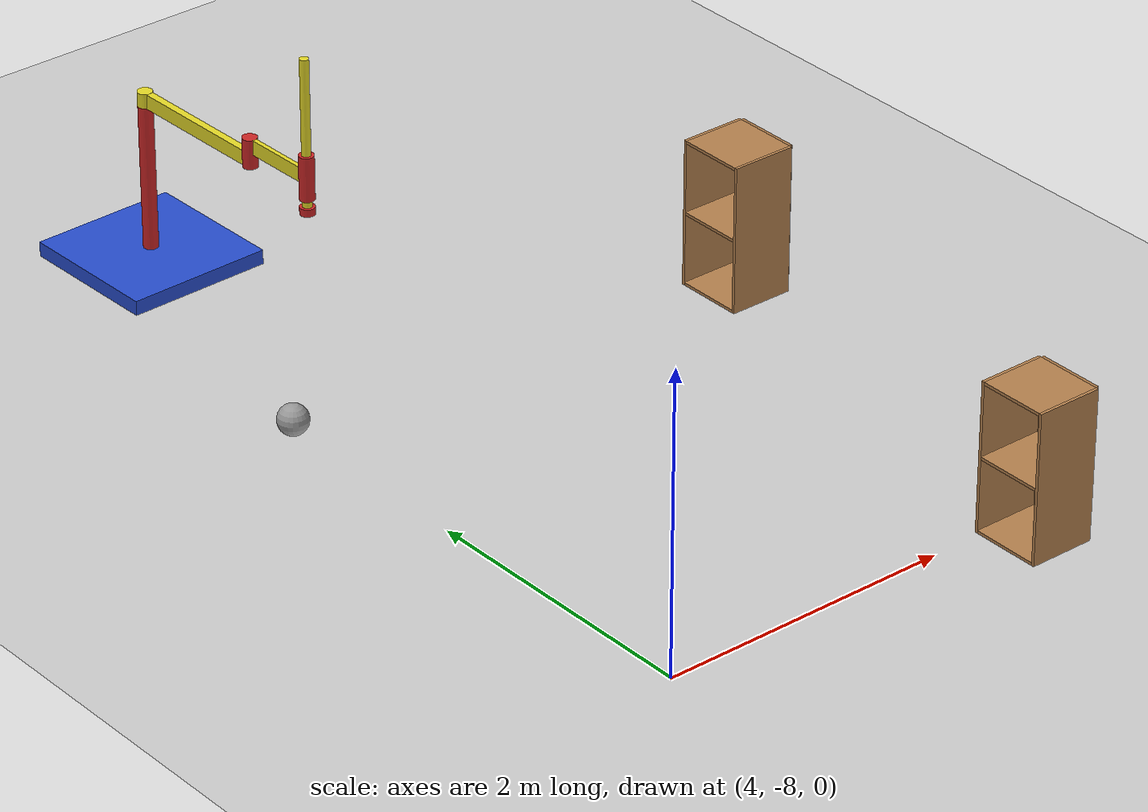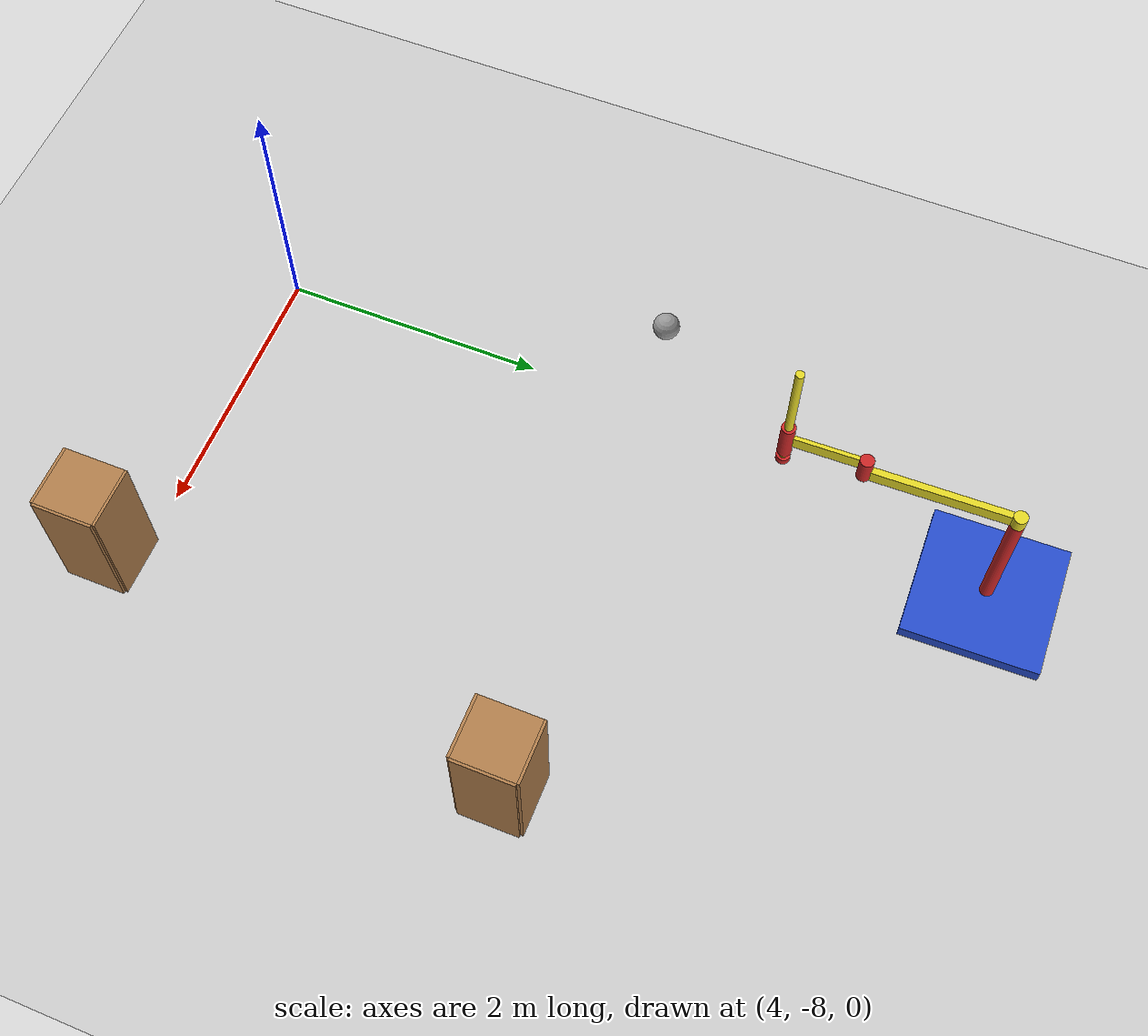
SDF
<sdf version="1.7">
 <world name="default">
  <model name="ground_plane">
   <static>1</static>
   <link name="link">
    <collision name="collision">
     <geometry><plane><normal>0 0 1</normal><size>100 100</size></plane></geometry>
     <surface>
      <contact><collide_bitmask>65535</collide_bitmask></contact>
      <friction><ode><mu>100</mu><mu2>50</mu2></ode></friction>
     </surface>
    </collision>
    <visual name="visual">
     <cast_shadows>0</cast_shadows>
     <geometry><plane><normal>0 0 1</normal><size>100 100</size></plane></geometry>
     <material>
      <script><uri>file://media/materials/scripts/gazebo.material</uri><name>Gazebo/Grey</name></script>
     </material>
    </visual>
   </link>
  </model>
  <model name="cabinet">
   <static>1</static>
   <link name="cabinet_bottom_plate">
    <inertial>
     <pose>0 0 -1 0 -0 0</pose>
     <inertia><ixx>2.05</ixx><ixy>0</ixy><ixz>0</ixz><iyy>2.05</iyy><iyz>0</iyz><izz>2.05</izz></inertia>
     <mass>25</mass>
    </inertial>
    <collision name="cabinet_bottom_plate_geom">
     <pose>0 0 0.01 0 -0 0</pose>
     <geometry><box><size>0.45 0.45 0.02</size></box></geometry>
    </collision>
    <visual name="cabinet_bottom_plate_geom_visual">
     <pose>0 0 0.01 0 -0 0</pose>
     <geometry><box><size>0.45 0.45 0.02</size></box></geometry>
     <material>
      <script><uri>file://media/materials/scripts/gazebo.material</uri><name>Gazebo/Wood</name></script>
     </material>
    </visual>
    <collision name="cabinet_bottom_plate_geom_cabinet_back_plate">
     <pose>0.235 0 0.51 0 -0 0</pose>
     <geometry><box><size>0.02 0.45 1.02</size></box></geometry>
    </collision>
    <visual name="cabinet_bottom_plate_geom_cabinet_back_plate_visual">
     <pose>0.235 0 0.51 0 -0 0</pose>
     <geometry><box><size>0.02 0.45 1.02</size></box></geometry>
     <material>
      <script><uri>file://media/materials/scripts/gazebo.material</uri><name>Gazebo/Wood</name></script>
     </material>
    </visual>
    <collision name="cabinet_bottom_plate_geom_cabinet_left_plate">
     <pose>0 0.235 0.51 0 -0 0</pose>
     <geometry><box><size>0.45 0.02 1.02</size></box></geometry>
    </collision>
    <visual name="cabinet_bottom_plate_geom_cabinet_left_plate_visual">
     <pose>0 0.235 0.51 0 -0 0</pose>
     <geometry><box><size>0.45 0.02 1.02</size></box></geometry>
     <material>
      <script><uri>file://media/materials/scripts/gazebo.material</uri><name>Gazebo/Wood</name></script>
     </material>
    </visual>
    <collision name="cabinet_bottom_plate_geom_cabinet_middle_plate">
     <pose>0 0 0.51 0 -0 0</pose>
     <geometry><box><size>0.45 0.45 0.02</size></box></geometry>
    </collision>
    <visual name="cabinet_bottom_plate_geom_cabinet_middle_plate_visual">
     <pose>0 0 0.51 0 -0 0</pose>
     <geometry><box><size>0.45 0.45 0.02</size></box></geometry>
     <material>
      <script><uri>file://media/materials/scripts/gazebo.material</uri><name>Gazebo/Wood</name></script>
     </material>
    </visual>
    <collision name="cabinet_bottom_plate_geom_cabinet_right_plate">
     <pose>0 -0.235 0.51 0 -0 0</pose>
     <geometry><box><size>0.45 0.02 1.02</size></box></geometry>
    </collision>
    <visual name="cabinet_bottom_plate_geom_cabinet_right_plate_visual">
     <pose>0 -0.235 0.51 0 -0 0</pose>
     <geometry><box><size>0.45 0.02 1.02</size></box></geometry>
     <material>
      <script><uri>file://media/materials/scripts/gazebo.material</uri><name>Gazebo/Wood</name></script>
     </material>
    </visual>
    <collision name="cabinet_bottom_plate_geom_cabinet_top_plate">
     <pose>0 0 1.01 0 -0 0</pose>
     <geometry><box><size>0.45 0.45 0.02</size></box></geometry>
    </collision>
    <visual name="cabinet_bottom_plate_geom_cabinet_top_plate_visual">
     <pose>0 0 1.01 0 -0 0</pose>
     <geometry><box><size>0.45 0.45 0.02</size></box></geometry>
     <material>
      <script><uri>file://media/materials/scripts/gazebo.material</uri><name>Gazebo/Wood</name></script>
     </material>
    </visual>
   </link>
   <pose>7.1738 -4.91295 0 0 -0 0</pose>
  </model>
  <model name="cabinet_0">
   <static>1</static>
   <link name="cabinet_bottom_plate">
    <inertial>
     <pose>0 0 -1 0 -0 0</pose>
     <inertia><ixx>2.05</ixx><ixy>0</ixy><ixz>0</ixz><iyy>2.05</iyy><iyz>0</iyz><izz>2.05</izz></inertia>
     <mass>25</mass>
    </inertial>
    <collision name="cabinet_bottom_plate_geom">
     <pose>0 0 0.01 0 -0 0</pose>
     <geometry><box><size>0.45 0.45 0.02</size></box></geometry>
    </collision>
    <visual name="cabinet_bottom_plate_geom_visual">
     <pose>0 0 0.01 0 -0 0</pose>
     <geometry><box><size>0.45 0.45 0.02</size></box></geometry>
     <material>
      <script><uri>file://media/materials/scripts/gazebo.material</uri><name>Gazebo/Wood</name></script>
     </material>
    </visual>
    <collision name="cabinet_bottom_plate_geom_cabinet_back_plate">
     <pose>0.235 0 0.51 0 -0 0</pose>
     <geometry><box><size>0.02 0.45 1.02</size></box></geometry>
    </collision>
    <visual name="cabinet_bottom_plate_geom_cabinet_back_plate_visual">
     <pose>0.235 0 0.51 0 -0 0</pose>
     <geometry><box><size>0.02 0.45 1.02</size></box></geometry>
     <material>
      <script><uri>file://media/materials/scripts/gazebo.material</uri><name>Gazebo/Wood</name></script>
     </material>
    </visual>
    <collision name="cabinet_bottom_plate_geom_cabinet_left_plate">
     <pose>0 0.235 0.51 0 -0 0</pose>
     <geometry><box><size>0.45 0.02 1.02</size></box></geometry>
    </collision>
    <visual name="cabinet_bottom_plate_geom_cabinet_left_plate_visual">
     <pose>0 0.235 0.51 0 -0 0</pose>
     <geometry><box><size>0.45 0.02 1.02</size></box></geometry>
     <material>
      <script><uri>file://media/materials/scripts/gazebo.material</uri><name>Gazebo/Wood</name></script>
     </material>
    </visual>
    <collision name="cabinet_bottom_plate_geom_cabinet_middle_plate">
     <pose>0 0 0.51 0 -0 0</pose>
     <geometry><box><size>0.45 0.45 0.02</size></box></geometry>
    </collision>
    <visual name="cabinet_bottom_plate_geom_cabinet_middle_plate_visual">
     <pose>0 0 0.51 0 -0 0</pose>
     <geometry><box><size>0.45 0.45 0.02</size></box></geometry>
     <material>
      <script><uri>file://media/materials/scripts/gazebo.material</uri><name>Gazebo/Wood</name></script>
     </material>
    </visual>
    <collision name="cabinet_bottom_plate_geom_cabinet_right_plate">
     <pose>0 -0.235 0.51 0 -0 0</pose>
     <geometry><box><size>0.45 0.02 1.02</size></box></geometry>
    </collision>
    <visual name="cabinet_bottom_plate_geom_cabinet_right_plate_visual">
     <pose>0 -0.235 0.51 0 -0 0</pose>
     <geometry><box><size>0.45 0.02 1.02</size></box></geometry>
     <material>
      <script><uri>file://media/materials/scripts/gazebo.material</uri><name>Gazebo/Wood</name></script>
     </material>
    </visual>
    <collision name="cabinet_bottom_plate_geom_cabinet_top_plate">
     <pose>0 0 1.01 0 -0 0</pose>
     <geometry><box><size>0.45 0.45 0.02</size></box></geometry>
    </collision>
    <visual name="cabinet_bottom_plate_geom_cabinet_top_plate_visual">
     <pose>0 0 1.01 0 -0 0</pose>
     <geometry><box><size>0.45 0.45 0.02</size></box></geometry>
     <material>
      <script><uri>file://media/materials/scripts/gazebo.material</uri><name>Gazebo/Wood</name></script>
     </material>
    </visual>
   </link>
   <pose>6.58147 -8.20495 0 0 -0 0</pose>
  </model>
  <model name="simple_arm">
   <link name="arm_base">
    <inertial>
     <pose>0 0 0.00099 0 -0 0</pose>
     <inertia><ixx>1.11</ixx><ixy>0</ixy><ixz>0</ixz><iyy>100.11</iyy><iyz>0</iyz><izz>1.01</izz></inertia>
     <mass>101</mass>
    </inertial>
    <collision name="arm_base_geom">
     <pose>0 0 0.05 0 -0 0</pose>
     <geometry><box><size>1 1 0.1</size></box></geometry>
    </collision>
    <visual name="arm_base_geom_visual">
     <pose>0 0 0.05 0 -0 0</pose>
     <geometry><box><size>1 1 0.1</size></box></geometry>
     <material>
      <script><uri>file://media/materials/scripts/gazebo.material</uri><name>Gazebo/Blue</name></script>
     </material>
    </visual>
    <collision name="arm_base_geom_arm_trunk">
     <pose>0 0 0.6 0 -0 0</pose>
     <geometry><cylinder><radius>0.05</radius><length>1</length></cylinder></geometry>
    </collision>
    <visual name="arm_base_geom_arm_trunk_visual">
     <pose>0 0 0.6 0 -0 0</pose>
     <geometry><cylinder><radius>0.05</radius><length>1</length></cylinder></geometry>
     <material>
      <script><uri>file://media/materials/scripts/gazebo.material</uri><name>Gazebo/Red</name></script>
     </material>
    </visual>
   </link>
   <link name="arm_shoulder_pan">
    <pose>0 0 1.1 0 -0 0</pose>
    <inertial>
     <pose>0.045455 0 0 0 -0 0</pose>
     <inertia><ixx>0.011</ixx><ixy>0</ixy><ixz>0</ixz><iyy>0.0225</iyy><iyz>0</iyz><izz>0.0135</izz></inertia>
     <mass>1.1</mass>
    </inertial>
    <collision name="arm_shoulder_pan_geom">
     <pose>0 0 0.05 0 -0 0</pose>
     <geometry><cylinder><radius>0.05</radius><length>0.1</length></cylinder></geometry>
    </collision>
    <visual name="arm_shoulder_pan_geom_visual">
     <pose>0 0 0.05 0 -0 0</pose>
     <geometry><cylinder><radius>0.05</radius><length>0.1</length></cylinder></geometry>
     <material>
      <script><uri>file://media/materials/scripts/gazebo.material</uri><name>Gazebo/Yellow</name></script>
     </material>
    </visual>
    <collision name="arm_shoulder_pan_geom_arm_shoulder">
     <pose>0.55 0 0.05 0 -0 0</pose>
     <geometry><box><size>1 0.05 0.1</size></box></geometry>
    </collision>
    <visual name="arm_shoulder_pan_geom_arm_shoulder_visual">
     <pose>0.55 0 0.05 0 -0 0</pose>
     <geometry><box><size>1 0.05 0.1</size></box></geometry>
     <material>
      <script><uri>file://media/materials/scripts/gazebo.material</uri><name>Gazebo/Yellow</name></script>
     </material>
    </visual>
   </link>
   <link name="arm_elbow_pan">
    <pose>1.05 0 1.1 0 -0 0</pose>
    <inertial>
     <pose>0.0875 0 0.083333 0 -0 0</pose>
     <inertia>
      <ixx>0.031</ixx>
      <ixy>0</ixy>
      <ixz>0.005</ixz>
      <iyy>0.07275</iyy>
      <iyz>0</iyz>
      <izz>0.04475</izz>
     </inertia>
     <mass>1.2</mass>
    </inertial>
    <collision name="arm_elbow_pan_geom">
     <pose>0 0 0.1 0 -0 0</pose>
     <geometry><cylinder><radius>0.05</radius><length>0.2</length></cylinder></geometry>
    </collision>
    <visual name="arm_elbow_pan_geom_visual">
     <pose>0 0 0.1 0 -0 0</pose>
     <geometry><cylinder><radius>0.05</radius><length>0.2</length></cylinder></geometry>
     <material>
      <script><uri>file://media/materials/scripts/gazebo.material</uri><name>Gazebo/Red</name></script>
     </material>
    </visual>
    <collision name="arm_elbow_pan_geom_arm_elbow">
     <pose>0.3 0 0.15 0 -0 0</pose>
     <geometry><box><size>0.5 0.03 0.1</size></box></geometry>
    </collision>
    <visual name="arm_elbow_pan_geom_arm_elbow_visual">
     <pose>0.3 0 0.15 0 -0 0</pose>
     <geometry><box><size>0.5 0.03 0.1</size></box></geometry>
     <material>
      <script><uri>file://media/materials/scripts/gazebo.material</uri><name>Gazebo/Yellow</name></script>
     </material>
    </visual>
    <collision name="arm_elbow_pan_geom_arm_wrist">
     <pose>0.55 0 0.15 0 -0 0</pose>
     <geometry><cylinder><radius>0.05</radius><length>0.3</length></cylinder></geometry>
    </collision>
    <visual name="arm_elbow_pan_geom_arm_wrist_visual">
     <pose>0.55 0 0.15 0 -0 0</pose>
     <geometry><cylinder><radius>0.05</radius><length>0.3</length></cylinder></geometry>
     <material>
      <script><uri>file://media/materials/scripts/gazebo.material</uri><name>Gazebo/Red</name></script>
     </material>
    </visual>
   </link>
   <link name="arm_wrist_lift">
    <pose>1.6 0 1.05 0 -0 0</pose>
    <inertial>
     <inertia><ixx>0.01</ixx><ixy>0</ixy><ixz>0</ixz><iyy>0.01</iyy><iyz>0</iyz><izz>0.001</izz></inertia>
     <mass>0.1</mass>
    </inertial>
    <collision name="arm_wrist_lift_geom">
     <pose>0 0 0.5 0 -0 0</pose>
     <geometry><cylinder><radius>0.03</radius><length>1</length></cylinder></geometry>
    </collision>
    <visual name="arm_wrist_lift_geom_visual">
     <pose>0 0 0.5 0 -0 0</pose>
     <geometry><cylinder><radius>0.03</radius><length>1</length></cylinder></geometry>
     <material>
      <script><uri>file://media/materials/scripts/gazebo.material</uri><name>Gazebo/Yellow</name></script>
     </material>
    </visual>
   </link>
   <link name="arm_wrist_roll">
    <pose>1.6 0 1 0 -0 0</pose>
    <inertial>
     <inertia><ixx>0.01</ixx><ixy>0</ixy><ixz>0</ixz><iyy>0.01</iyy><iyz>0</iyz><izz>0.001</izz></inertia>
     <mass>0.1</mass>
    </inertial>
    <collision name="arm_wrist_roll_geom">
     <pose>0 0 0.025 0 -0 0</pose>
     <geometry><cylinder><radius>0.05</radius><length>0.05</length></cylinder></geometry>
    </collision>
    <visual name="arm_wrist_roll_geom_visual">
     <pose>0 0 0.025 0 -0 0</pose>
     <geometry><cylinder><radius>0.05</radius><length>0.05</length></cylinder></geometry>
     <material>
      <script><uri>file://media/materials/scripts/gazebo.material</uri><name>Gazebo/Red</name></script>
     </material>
    </visual>
   </link>
   <joint name="arm_shoulder_pan_joint" type="revolute">
    <parent>arm_base</parent>
    <child>arm_shoulder_pan</child>
    <axis>
     <dynamics>
      <damping>1</damping>
      <friction>0</friction>
      <spring_reference>0</spring_reference>
      <spring_stiffness>0</spring_stiffness>
     </dynamics>
     <xyz expressed_in="__model__">0 0 1</xyz>
     <limit><lower>-1e+16</lower><upper>1e+16</upper></limit>
    </axis>
   </joint>
   <joint name="arm_elbow_pan_joint" type="revolute">
    <parent>arm_shoulder_pan</parent>
    <child>arm_elbow_pan</child>
    <axis>
     <dynamics>
      <damping>1</damping>
      <friction>0</friction>
      <spring_reference>0</spring_reference>
      <spring_stiffness>0</spring_stiffness>
     </dynamics>
     <xyz expressed_in="__model__">0 0 1</xyz>
     <limit><lower>-1e+16</lower><upper>1e+16</upper></limit>
    </axis>
   </joint>
   <joint name="arm_wrist_lift_joint" type="prismatic">
    <parent>arm_elbow_pan</parent>
    <child>arm_wrist_lift</child>
    <axis>
     <dynamics>
      <damping>1</damping>
      <friction>0</friction>
      <spring_reference>0</spring_reference>
      <spring_stiffness>0</spring_stiffness>
     </dynamics>
     <limit><lower>-0.8</lower><upper>0.1</upper></limit>
     <xyz expressed_in="__model__">0 0 1</xyz>
    </axis>
   </joint>
   <joint name="arm_wrist_roll_joint" type="revolute">
    <parent>arm_wrist_lift</parent>
    <child>arm_wrist_roll</child>
    <axis>
     <dynamics>
      <damping>1</damping>
      <friction>0</friction>
      <spring_reference>0</spring_reference>
      <spring_stiffness>0</spring_stiffness>
     </dynamics>
     <limit><lower>-2.99999</lower><upper>2.99999</upper></limit>
     <xyz expressed_in="__model__">0 0 1</xyz>
    </axis>
   </joint>
   <pose>4.56966 -2.30904 -0 0 -0 -1.54657</pose>
  </model>
  <model name="my_ball">
   <link name="link_0">
    <inertial>
     <mass>1</mass>
     <inertia><ixx>0.1</ixx><ixy>0</ixy><ixz>0</ixz><iyy>0.1</iyy><iyz>0</iyz><izz>0.1</izz></inertia>
    </inertial>
    <visual name="visual">
     <geometry><sphere><radius>0.1</radius></sphere></geometry>
     <material>
      <lighting>1</lighting>
      <script><uri>file://media/materials/scripts/gazebo.material</uri><name>Gazebo/Grey</name></script>
      <shader type="pixel"><normal_map>__default__</normal_map></shader>
      <ambient>1 1 1 1</ambient>
      <diffuse>1 1 1 1</diffuse>
      <specular>1 1 1 1</specular>
      <emissive>1 1 1 1</emissive>
     </material>
    </visual>
    <collision name="collision">
     <geometry><sphere><radius>0.1</radius></sphere></geometry>
     <surface>
      <friction>
       <ode><mu>1</mu><mu2>1</mu2><fdir1>0 0 0</fdir1><slip1>0</slip1><slip2>0</slip2></ode>
       <torsional>
        <coefficient>1</coefficient>
        <patch_radius>0</patch_radius>
        <surface_radius>0</surface_radius>
        <use_patch_radius>1</use_patch_radius>
        <ode><slip>0</slip></ode>
       </torsional>
      </friction>
      <bounce><restitution_coefficient>0</restitution_coefficient><threshold>1e+06</threshold></bounce>
      <contact>
       <collide_without_contact>0</collide_without_contact>
       <collide_without_contact_bitmask>1</collide_without_contact_bitmask>
       <collide_bitmask>1</collide_bitmask>
       <ode>
        <soft_cfm>0</soft_cfm>
        <soft_erp>0.2</soft_erp>
        <kp>1e+13</kp>
        <kd>1</kd>
        <max_vel>0.01</max_vel>
        <min_depth>0</min_depth>
       </ode>
       <bullet>
        <split_impulse>1</split_impulse>
        <split_impulse_penetration_threshold>-0.01</split_impulse_penetration_threshold>
        <soft_cfm>0</soft_cfm>
        <soft_erp>0.2</soft_erp>
        <kp>1e+13</kp>
        <kd>1</kd>
       </bullet>
      </contact>
     </surface>
    </collision>
   </link>
   <static>0</static>
   <pose>3.57577 -5.10153 0.5 0 -0 0</pose>
  </model>
 </world>
</sdf>
